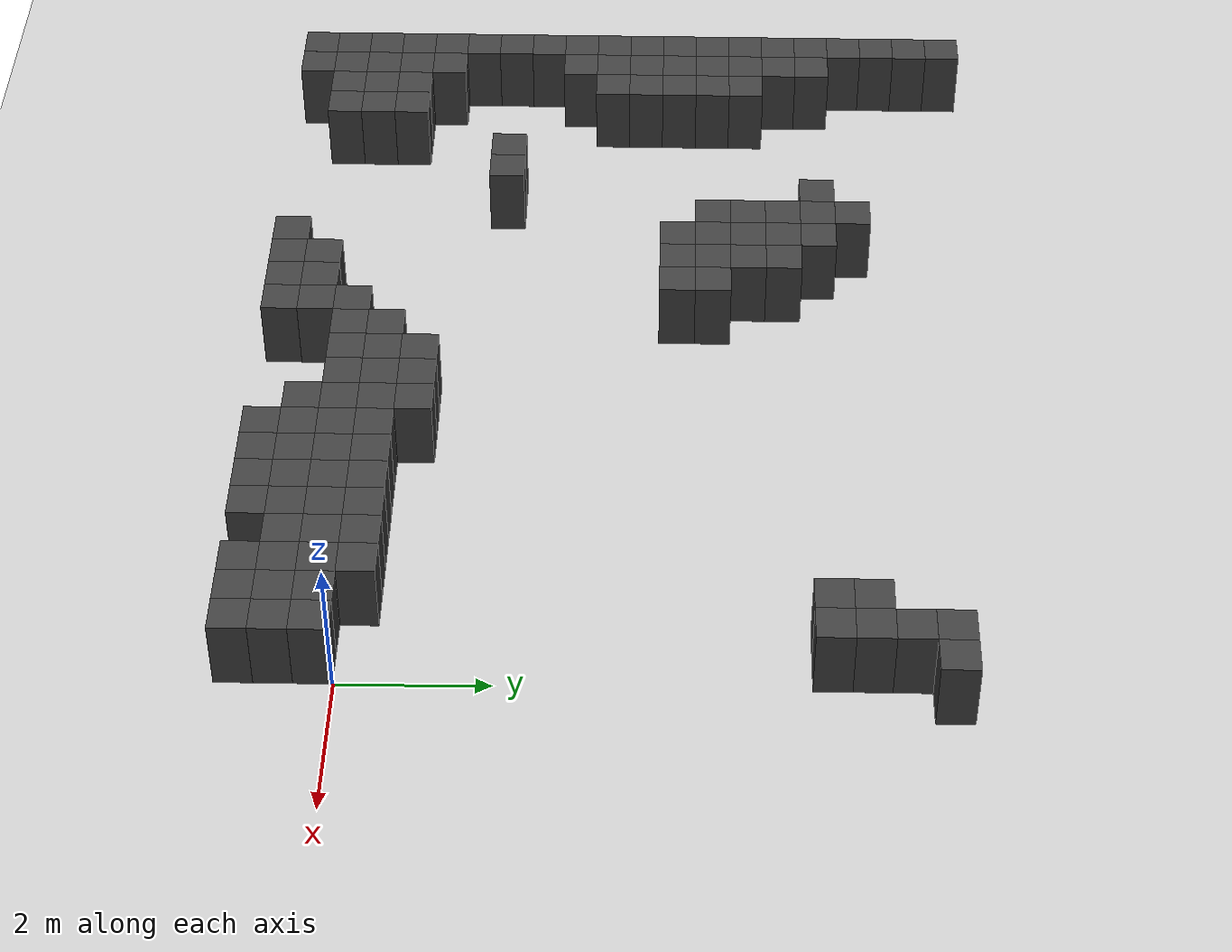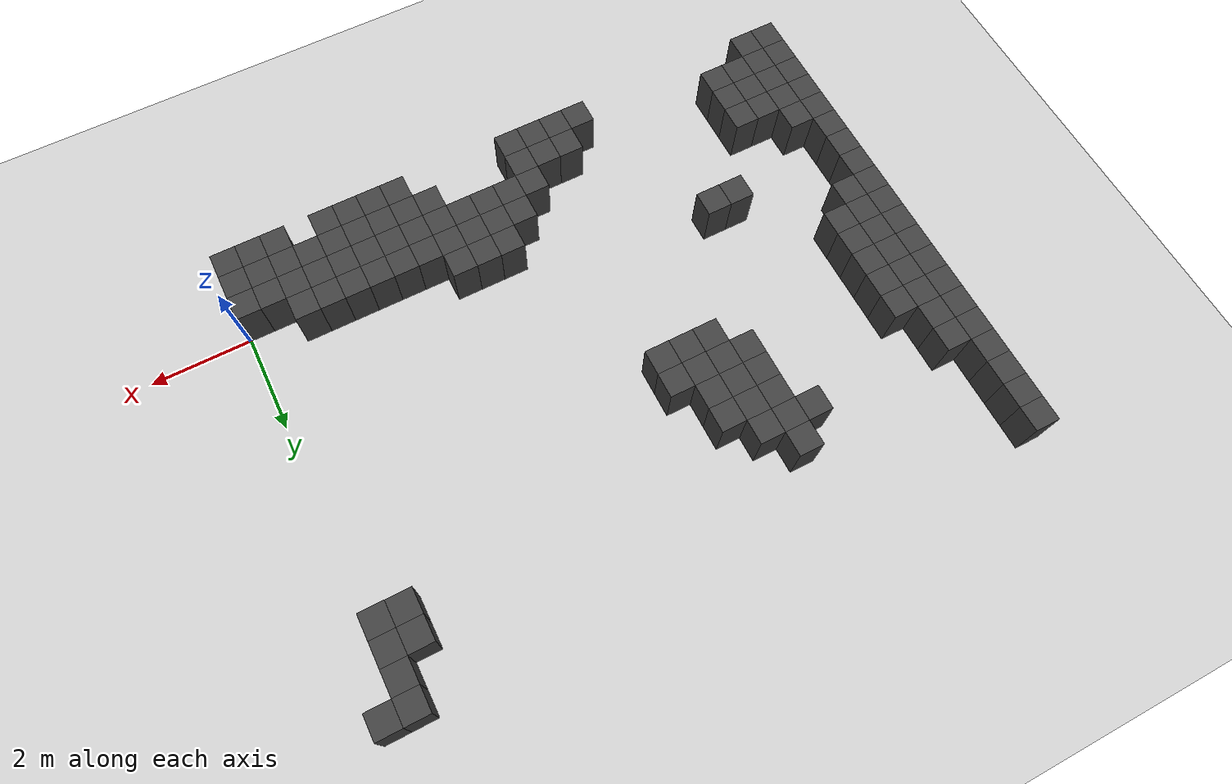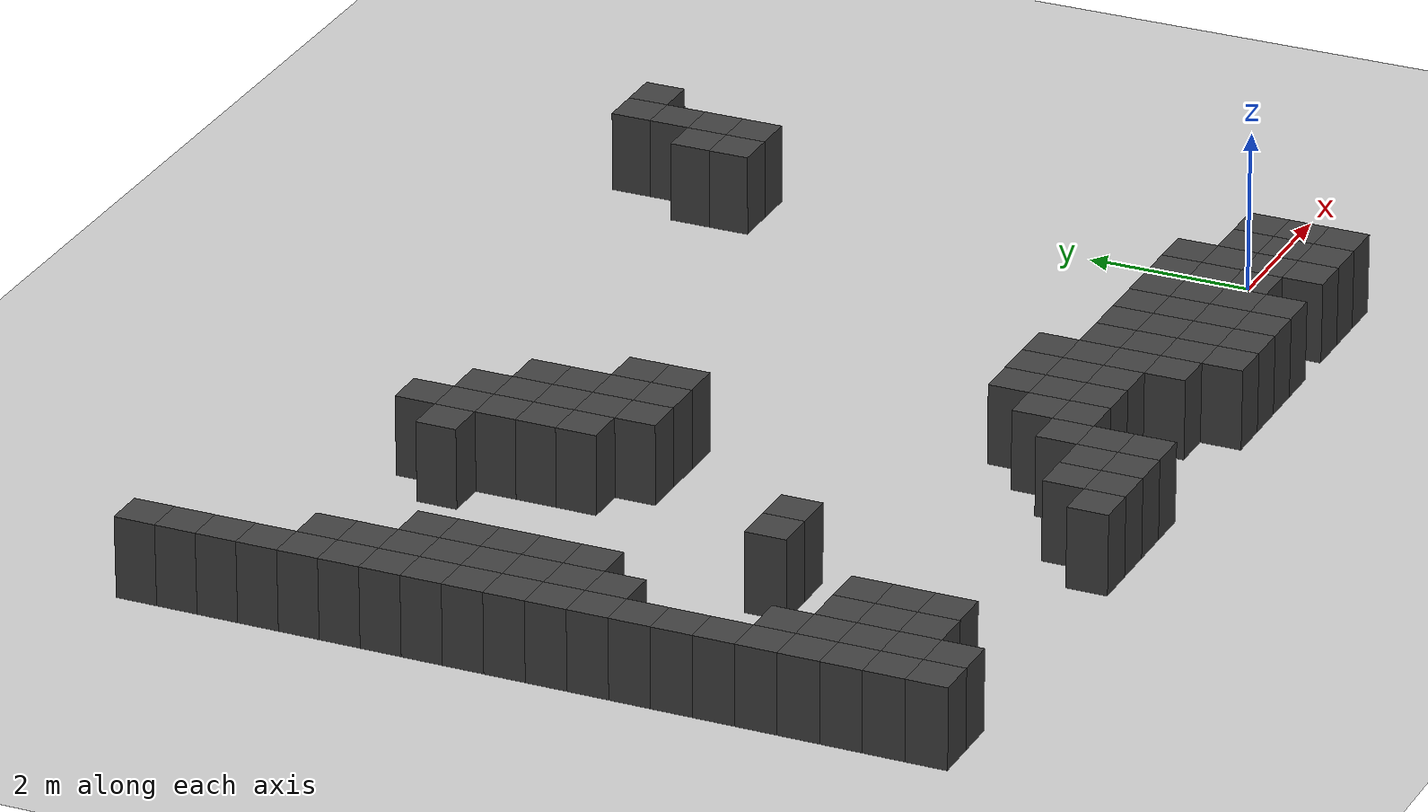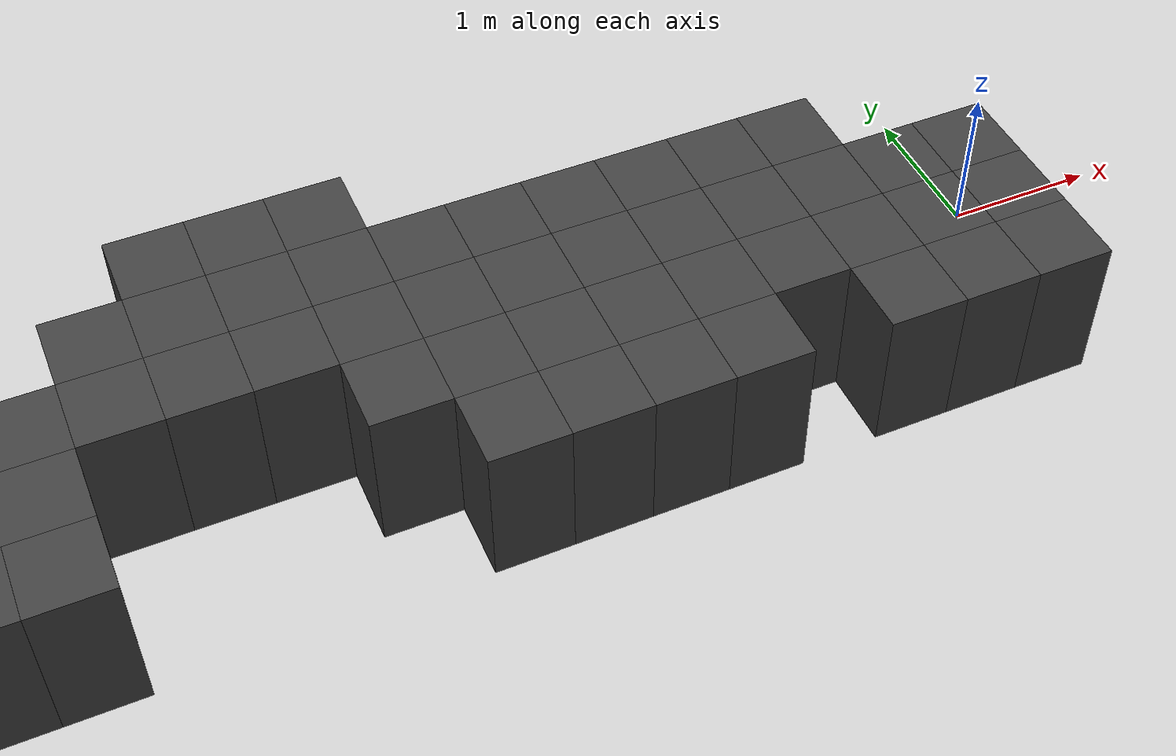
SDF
<sdf version="1.7">
 <world name="map_9826">
  <model name="ground_plane">
   <static>true</static>
   <link name="link">
    <collision name="collision">
     <geometry><plane><normal>0 0 1</normal><size>200 200</size></plane></geometry>
    </collision>
    <visual name="visual">
     <geometry><plane><normal>0 0 1</normal><size>200 200</size></plane></geometry>
     <material><ambient>0.8 0.8 0.8 1</ambient><diffuse>0.8 0.8 0.8 1</diffuse></material>
    </visual>
   </link>
  </model>
  <model name="maze_environment">
   <static>true</static>
   <link name="wall_251">
    <pose>-12.250 8.250 0.500 0 0 0</pose>
    <collision name="col"><geometry><box><size>0.5 0.5 1.0</size></box></geometry></collision>
    <visual name="vis">
     <geometry><box><size>0.5 0.5 1.0</size></box></geometry>
     <material><ambient>0.15 0.15 0.15 1</ambient><diffuse>0.25 0.25 0.25 1</diffuse></material>
    </visual>
   </link>
   <link name="wall_263">
    <pose>-12.250 7.750 0.500 0 0 0</pose>
    <collision name="col"><geometry><box><size>0.5 0.5 1.0</size></box></geometry></collision>
    <visual name="vis">
     <geometry><box><size>0.5 0.5 1.0</size></box></geometry>
     <material><ambient>0.15 0.15 0.15 1</ambient><diffuse>0.25 0.25 0.25 1</diffuse></material>
    </visual>
   </link>
   <link name="wall_264">
    <pose>-0.250 7.750 0.500 0 0 0</pose>
    <collision name="col"><geometry><box><size>0.5 0.5 1.0</size></box></geometry></collision>
    <visual name="vis">
     <geometry><box><size>0.5 0.5 1.0</size></box></geometry>
     <material><ambient>0.15 0.15 0.15 1</ambient><diffuse>0.25 0.25 0.25 1</diffuse></material>
    </visual>
   </link>
   <link name="wall_265">
    <pose>0.250 7.750 0.500 0 0 0</pose>
    <collision name="col"><geometry><box><size>0.5 0.5 1.0</size></box></geometry></collision>
    <visual name="vis">
     <geometry><box><size>0.5 0.5 1.0</size></box></geometry>
     <material><ambient>0.15 0.15 0.15 1</ambient><diffuse>0.25 0.25 0.25 1</diffuse></material>
    </visual>
   </link>
   <link name="wall_270">
    <pose>-12.250 7.250 0.500 0 0 0</pose>
    <collision name="col"><geometry><box><size>0.5 0.5 1.0</size></box></geometry></collision>
    <visual name="vis">
     <geometry><box><size>0.5 0.5 1.0</size></box></geometry>
     <material><ambient>0.15 0.15 0.15 1</ambient><diffuse>0.25 0.25 0.25 1</diffuse></material>
    </visual>
   </link>
   <link name="wall_271">
    <pose>-0.250 7.250 0.500 0 0 0</pose>
    <collision name="col"><geometry><box><size>0.5 0.5 1.0</size></box></geometry></collision>
    <visual name="vis">
     <geometry><box><size>0.5 0.5 1.0</size></box></geometry>
     <material><ambient>0.15 0.15 0.15 1</ambient><diffuse>0.25 0.25 0.25 1</diffuse></material>
    </visual>
   </link>
   <link name="wall_278">
    <pose>-12.250 6.750 0.500 0 0 0</pose>
    <collision name="col"><geometry><box><size>0.5 0.5 1.0</size></box></geometry></collision>
    <visual name="vis">
     <geometry><box><size>0.5 0.5 1.0</size></box></geometry>
     <material><ambient>0.15 0.15 0.15 1</ambient><diffuse>0.25 0.25 0.25 1</diffuse></material>
    </visual>
   </link>
   <link name="wall_279">
    <pose>-8.250 6.750 0.500 0 0 0</pose>
    <collision name="col"><geometry><box><size>0.5 0.5 1.0</size></box></geometry></collision>
    <visual name="vis">
     <geometry><box><size>0.5 0.5 1.0</size></box></geometry>
     <material><ambient>0.15 0.15 0.15 1</ambient><diffuse>0.25 0.25 0.25 1</diffuse></material>
    </visual>
   </link>
   <link name="wall_280">
    <pose>-0.750 6.750 0.500 0 0 0</pose>
    <collision name="col"><geometry><box><size>0.5 0.5 1.0</size></box></geometry></collision>
    <visual name="vis">
     <geometry><box><size>0.5 0.5 1.0</size></box></geometry>
     <material><ambient>0.15 0.15 0.15 1</ambient><diffuse>0.25 0.25 0.25 1</diffuse></material>
    </visual>
   </link>
   <link name="wall_281">
    <pose>-0.250 6.750 0.500 0 0 0</pose>
    <collision name="col"><geometry><box><size>0.5 0.5 1.0</size></box></geometry></collision>
    <visual name="vis">
     <geometry><box><size>0.5 0.5 1.0</size></box></geometry>
     <material><ambient>0.15 0.15 0.15 1</ambient><diffuse>0.25 0.25 0.25 1</diffuse></material>
    </visual>
   </link>
   <link name="wall_290">
    <pose>-12.250 6.250 0.500 0 0 0</pose>
    <collision name="col"><geometry><box><size>0.5 0.5 1.0</size></box></geometry></collision>
    <visual name="vis">
     <geometry><box><size>0.5 0.5 1.0</size></box></geometry>
     <material><ambient>0.15 0.15 0.15 1</ambient><diffuse>0.25 0.25 0.25 1</diffuse></material>
    </visual>
   </link>
   <link name="wall_291">
    <pose>-11.750 6.250 0.500 0 0 0</pose>
    <collision name="col"><geometry><box><size>0.5 0.5 1.0</size></box></geometry></collision>
    <visual name="vis">
     <geometry><box><size>0.5 0.5 1.0</size></box></geometry>
     <material><ambient>0.15 0.15 0.15 1</ambient><diffuse>0.25 0.25 0.25 1</diffuse></material>
    </visual>
   </link>
   <link name="wall_292">
    <pose>-8.750 6.250 0.500 0 0 0</pose>
    <collision name="col"><geometry><box><size>0.5 0.5 1.0</size></box></geometry></collision>
    <visual name="vis">
     <geometry><box><size>0.5 0.5 1.0</size></box></geometry>
     <material><ambient>0.15 0.15 0.15 1</ambient><diffuse>0.25 0.25 0.25 1</diffuse></material>
    </visual>
   </link>
   <link name="wall_293">
    <pose>-8.250 6.250 0.500 0 0 0</pose>
    <collision name="col"><geometry><box><size>0.5 0.5 1.0</size></box></geometry></collision>
    <visual name="vis">
     <geometry><box><size>0.5 0.5 1.0</size></box></geometry>
     <material><ambient>0.15 0.15 0.15 1</ambient><diffuse>0.25 0.25 0.25 1</diffuse></material>
    </visual>
   </link>
   <link name="wall_294">
    <pose>-7.750 6.250 0.500 0 0 0</pose>
    <collision name="col"><geometry><box><size>0.5 0.5 1.0</size></box></geometry></collision>
    <visual name="vis">
     <geometry><box><size>0.5 0.5 1.0</size></box></geometry>
     <material><ambient>0.15 0.15 0.15 1</ambient><diffuse>0.25 0.25 0.25 1</diffuse></material>
    </visual>
   </link>
   <link name="wall_295">
    <pose>-0.750 6.250 0.500 0 0 0</pose>
    <collision name="col"><geometry><box><size>0.5 0.5 1.0</size></box></geometry></collision>
    <visual name="vis">
     <geometry><box><size>0.5 0.5 1.0</size></box></geometry>
     <material><ambient>0.15 0.15 0.15 1</ambient><diffuse>0.25 0.25 0.25 1</diffuse></material>
    </visual>
   </link>
   <link name="wall_296">
    <pose>-0.250 6.250 0.500 0 0 0</pose>
    <collision name="col"><geometry><box><size>0.5 0.5 1.0</size></box></geometry></collision>
    <visual name="vis">
     <geometry><box><size>0.5 0.5 1.0</size></box></geometry>
     <material><ambient>0.15 0.15 0.15 1</ambient><diffuse>0.25 0.25 0.25 1</diffuse></material>
    </visual>
   </link>
   <link name="wall_310">
    <pose>-12.250 5.750 0.500 0 0 0</pose>
    <collision name="col"><geometry><box><size>0.5 0.5 1.0</size></box></geometry></collision>
    <visual name="vis">
     <geometry><box><size>0.5 0.5 1.0</size></box></geometry>
     <material><ambient>0.15 0.15 0.15 1</ambient><diffuse>0.25 0.25 0.25 1</diffuse></material>
    </visual>
   </link>
   <link name="wall_311">
    <pose>-11.750 5.750 0.500 0 0 0</pose>
    <collision name="col"><geometry><box><size>0.5 0.5 1.0</size></box></geometry></collision>
    <visual name="vis">
     <geometry><box><size>0.5 0.5 1.0</size></box></geometry>
     <material><ambient>0.15 0.15 0.15 1</ambient><diffuse>0.25 0.25 0.25 1</diffuse></material>
    </visual>
   </link>
   <link name="wall_312">
    <pose>-8.250 5.750 0.500 0 0 0</pose>
    <collision name="col"><geometry><box><size>0.5 0.5 1.0</size></box></geometry></collision>
    <visual name="vis">
     <geometry><box><size>0.5 0.5 1.0</size></box></geometry>
     <material><ambient>0.15 0.15 0.15 1</ambient><diffuse>0.25 0.25 0.25 1</diffuse></material>
    </visual>
   </link>
   <link name="wall_313">
    <pose>-7.750 5.750 0.500 0 0 0</pose>
    <collision name="col"><geometry><box><size>0.5 0.5 1.0</size></box></geometry></collision>
    <visual name="vis">
     <geometry><box><size>0.5 0.5 1.0</size></box></geometry>
     <material><ambient>0.15 0.15 0.15 1</ambient><diffuse>0.25 0.25 0.25 1</diffuse></material>
    </visual>
   </link>
   <link name="wall_314">
    <pose>-7.250 5.750 0.500 0 0 0</pose>
    <collision name="col"><geometry><box><size>0.5 0.5 1.0</size></box></geometry></collision>
    <visual name="vis">
     <geometry><box><size>0.5 0.5 1.0</size></box></geometry>
     <material><ambient>0.15 0.15 0.15 1</ambient><diffuse>0.25 0.25 0.25 1</diffuse></material>
    </visual>
   </link>
   <link name="wall_326">
    <pose>-12.250 5.250 0.500 0 0 0</pose>
    <collision name="col"><geometry><box><size>0.5 0.5 1.0</size></box></geometry></collision>
    <visual name="vis">
     <geometry><box><size>0.5 0.5 1.0</size></box></geometry>
     <material><ambient>0.15 0.15 0.15 1</ambient><diffuse>0.25 0.25 0.25 1</diffuse></material>
    </visual>
   </link>
   <link name="wall_327">
    <pose>-11.750 5.250 0.500 0 0 0</pose>
    <collision name="col"><geometry><box><size>0.5 0.5 1.0</size></box></geometry></collision>
    <visual name="vis">
     <geometry><box><size>0.5 0.5 1.0</size></box></geometry>
     <material><ambient>0.15 0.15 0.15 1</ambient><diffuse>0.25 0.25 0.25 1</diffuse></material>
    </visual>
   </link>
   <link name="wall_328">
    <pose>-11.250 5.250 0.500 0 0 0</pose>
    <collision name="col"><geometry><box><size>0.5 0.5 1.0</size></box></geometry></collision>
    <visual name="vis">
     <geometry><box><size>0.5 0.5 1.0</size></box></geometry>
     <material><ambient>0.15 0.15 0.15 1</ambient><diffuse>0.25 0.25 0.25 1</diffuse></material>
    </visual>
   </link>
   <link name="wall_329">
    <pose>-8.250 5.250 0.500 0 0 0</pose>
    <collision name="col"><geometry><box><size>0.5 0.5 1.0</size></box></geometry></collision>
    <visual name="vis">
     <geometry><box><size>0.5 0.5 1.0</size></box></geometry>
     <material><ambient>0.15 0.15 0.15 1</ambient><diffuse>0.25 0.25 0.25 1</diffuse></material>
    </visual>
   </link>
   <link name="wall_330">
    <pose>-7.750 5.250 0.500 0 0 0</pose>
    <collision name="col"><geometry><box><size>0.5 0.5 1.0</size></box></geometry></collision>
    <visual name="vis">
     <geometry><box><size>0.5 0.5 1.0</size></box></geometry>
     <material><ambient>0.15 0.15 0.15 1</ambient><diffuse>0.25 0.25 0.25 1</diffuse></material>
    </visual>
   </link>
   <link name="wall_331">
    <pose>-7.250 5.250 0.500 0 0 0</pose>
    <collision name="col"><geometry><box><size>0.5 0.5 1.0</size></box></geometry></collision>
    <visual name="vis">
     <geometry><box><size>0.5 0.5 1.0</size></box></geometry>
     <material><ambient>0.15 0.15 0.15 1</ambient><diffuse>0.25 0.25 0.25 1</diffuse></material>
    </visual>
   </link>
   <link name="wall_339">
    <pose>-12.250 4.750 0.500 0 0 0</pose>
    <collision name="col"><geometry><box><size>0.5 0.5 1.0</size></box></geometry></collision>
    <visual name="vis">
     <geometry><box><size>0.5 0.5 1.0</size></box></geometry>
     <material><ambient>0.15 0.15 0.15 1</ambient><diffuse>0.25 0.25 0.25 1</diffuse></material>
    </visual>
   </link>
   <link name="wall_340">
    <pose>-11.750 4.750 0.500 0 0 0</pose>
    <collision name="col"><geometry><box><size>0.5 0.5 1.0</size></box></geometry></collision>
    <visual name="vis">
     <geometry><box><size>0.5 0.5 1.0</size></box></geometry>
     <material><ambient>0.15 0.15 0.15 1</ambient><diffuse>0.25 0.25 0.25 1</diffuse></material>
    </visual>
   </link>
   <link name="wall_341">
    <pose>-11.250 4.750 0.500 0 0 0</pose>
    <collision name="col"><geometry><box><size>0.5 0.5 1.0</size></box></geometry></collision>
    <visual name="vis">
     <geometry><box><size>0.5 0.5 1.0</size></box></geometry>
     <material><ambient>0.15 0.15 0.15 1</ambient><diffuse>0.25 0.25 0.25 1</diffuse></material>
    </visual>
   </link>
   <link name="wall_342">
    <pose>-8.250 4.750 0.500 0 0 0</pose>
    <collision name="col"><geometry><box><size>0.5 0.5 1.0</size></box></geometry></collision>
    <visual name="vis">
     <geometry><box><size>0.5 0.5 1.0</size></box></geometry>
     <material><ambient>0.15 0.15 0.15 1</ambient><diffuse>0.25 0.25 0.25 1</diffuse></material>
    </visual>
   </link>
   <link name="wall_343">
    <pose>-7.750 4.750 0.500 0 0 0</pose>
    <collision name="col"><geometry><box><size>0.5 0.5 1.0</size></box></geometry></collision>
    <visual name="vis">
     <geometry><box><size>0.5 0.5 1.0</size></box></geometry>
     <material><ambient>0.15 0.15 0.15 1</ambient><diffuse>0.25 0.25 0.25 1</diffuse></material>
    </visual>
   </link>
   <link name="wall_344">
    <pose>-7.250 4.750 0.500 0 0 0</pose>
    <collision name="col"><geometry><box><size>0.5 0.5 1.0</size></box></geometry></collision>
    <visual name="vis">
     <geometry><box><size>0.5 0.5 1.0</size></box></geometry>
     <material><ambient>0.15 0.15 0.15 1</ambient><diffuse>0.25 0.25 0.25 1</diffuse></material>
    </visual>
   </link>
   <link name="wall_345">
    <pose>-6.750 4.750 0.500 0 0 0</pose>
    <collision name="col"><geometry><box><size>0.5 0.5 1.0</size></box></geometry></collision>
    <visual name="vis">
     <geometry><box><size>0.5 0.5 1.0</size></box></geometry>
     <material><ambient>0.15 0.15 0.15 1</ambient><diffuse>0.25 0.25 0.25 1</diffuse></material>
    </visual>
   </link>
   <link name="wall_352">
    <pose>-12.250 4.250 0.500 0 0 0</pose>
    <collision name="col"><geometry><box><size>0.5 0.5 1.0</size></box></geometry></collision>
    <visual name="vis">
     <geometry><box><size>0.5 0.5 1.0</size></box></geometry>
     <material><ambient>0.15 0.15 0.15 1</ambient><diffuse>0.25 0.25 0.25 1</diffuse></material>
    </visual>
   </link>
   <link name="wall_353">
    <pose>-11.750 4.250 0.500 0 0 0</pose>
    <collision name="col"><geometry><box><size>0.5 0.5 1.0</size></box></geometry></collision>
    <visual name="vis">
     <geometry><box><size>0.5 0.5 1.0</size></box></geometry>
     <material><ambient>0.15 0.15 0.15 1</ambient><diffuse>0.25 0.25 0.25 1</diffuse></material>
    </visual>
   </link>
   <link name="wall_354">
    <pose>-11.250 4.250 0.500 0 0 0</pose>
    <collision name="col"><geometry><box><size>0.5 0.5 1.0</size></box></geometry></collision>
    <visual name="vis">
     <geometry><box><size>0.5 0.5 1.0</size></box></geometry>
     <material><ambient>0.15 0.15 0.15 1</ambient><diffuse>0.25 0.25 0.25 1</diffuse></material>
    </visual>
   </link>
   <link name="wall_355">
    <pose>-7.750 4.250 0.500 0 0 0</pose>
    <collision name="col"><geometry><box><size>0.5 0.5 1.0</size></box></geometry></collision>
    <visual name="vis">
     <geometry><box><size>0.5 0.5 1.0</size></box></geometry>
     <material><ambient>0.15 0.15 0.15 1</ambient><diffuse>0.25 0.25 0.25 1</diffuse></material>
    </visual>
   </link>
   <link name="wall_356">
    <pose>-7.250 4.250 0.500 0 0 0</pose>
    <collision name="col"><geometry><box><size>0.5 0.5 1.0</size></box></geometry></collision>
    <visual name="vis">
     <geometry><box><size>0.5 0.5 1.0</size></box></geometry>
     <material><ambient>0.15 0.15 0.15 1</ambient><diffuse>0.25 0.25 0.25 1</diffuse></material>
    </visual>
   </link>
   <link name="wall_357">
    <pose>-6.750 4.250 0.500 0 0 0</pose>
    <collision name="col"><geometry><box><size>0.5 0.5 1.0</size></box></geometry></collision>
    <visual name="vis">
     <geometry><box><size>0.5 0.5 1.0</size></box></geometry>
     <material><ambient>0.15 0.15 0.15 1</ambient><diffuse>0.25 0.25 0.25 1</diffuse></material>
    </visual>
   </link>
   <link name="wall_368">
    <pose>-12.250 3.750 0.500 0 0 0</pose>
    <collision name="col"><geometry><box><size>0.5 0.5 1.0</size></box></geometry></collision>
    <visual name="vis">
     <geometry><box><size>0.5 0.5 1.0</size></box></geometry>
     <material><ambient>0.15 0.15 0.15 1</ambient><diffuse>0.25 0.25 0.25 1</diffuse></material>
    </visual>
   </link>
   <link name="wall_369">
    <pose>-11.750 3.750 0.500 0 0 0</pose>
    <collision name="col"><geometry><box><size>0.5 0.5 1.0</size></box></geometry></collision>
    <visual name="vis">
     <geometry><box><size>0.5 0.5 1.0</size></box></geometry>
     <material><ambient>0.15 0.15 0.15 1</ambient><diffuse>0.25 0.25 0.25 1</diffuse></material>
    </visual>
   </link>
   <link name="wall_370">
    <pose>-11.250 3.750 0.500 0 0 0</pose>
    <collision name="col"><geometry><box><size>0.5 0.5 1.0</size></box></geometry></collision>
    <visual name="vis">
     <geometry><box><size>0.5 0.5 1.0</size></box></geometry>
     <material><ambient>0.15 0.15 0.15 1</ambient><diffuse>0.25 0.25 0.25 1</diffuse></material>
    </visual>
   </link>
   <link name="wall_385">
    <pose>-12.250 3.250 0.500 0 0 0</pose>
    <collision name="col"><geometry><box><size>0.5 0.5 1.0</size></box></geometry></collision>
    <visual name="vis">
     <geometry><box><size>0.5 0.5 1.0</size></box></geometry>
     <material><ambient>0.15 0.15 0.15 1</ambient><diffuse>0.25 0.25 0.25 1</diffuse></material>
    </visual>
   </link>
   <link name="wall_386">
    <pose>-11.750 3.250 0.500 0 0 0</pose>
    <collision name="col"><geometry><box><size>0.5 0.5 1.0</size></box></geometry></collision>
    <visual name="vis">
     <geometry><box><size>0.5 0.5 1.0</size></box></geometry>
     <material><ambient>0.15 0.15 0.15 1</ambient><diffuse>0.25 0.25 0.25 1</diffuse></material>
    </visual>
   </link>
   <link name="wall_387">
    <pose>-11.250 3.250 0.500 0 0 0</pose>
    <collision name="col"><geometry><box><size>0.5 0.5 1.0</size></box></geometry></collision>
    <visual name="vis">
     <geometry><box><size>0.5 0.5 1.0</size></box></geometry>
     <material><ambient>0.15 0.15 0.15 1</ambient><diffuse>0.25 0.25 0.25 1</diffuse></material>
    </visual>
   </link>
   <link name="wall_402">
    <pose>-12.250 2.750 0.500 0 0 0</pose>
    <collision name="col"><geometry><box><size>0.5 0.5 1.0</size></box></geometry></collision>
    <visual name="vis">
     <geometry><box><size>0.5 0.5 1.0</size></box></geometry>
     <material><ambient>0.15 0.15 0.15 1</ambient><diffuse>0.25 0.25 0.25 1</diffuse></material>
    </visual>
   </link>
   <link name="wall_403">
    <pose>-11.750 2.750 0.500 0 0 0</pose>
    <collision name="col"><geometry><box><size>0.5 0.5 1.0</size></box></geometry></collision>
    <visual name="vis">
     <geometry><box><size>0.5 0.5 1.0</size></box></geometry>
     <material><ambient>0.15 0.15 0.15 1</ambient><diffuse>0.25 0.25 0.25 1</diffuse></material>
    </visual>
   </link>
   <link name="wall_418">
    <pose>-12.250 2.250 0.500 0 0 0</pose>
    <collision name="col"><geometry><box><size>0.5 0.5 1.0</size></box></geometry></collision>
    <visual name="vis">
     <geometry><box><size>0.5 0.5 1.0</size></box></geometry>
     <material><ambient>0.15 0.15 0.15 1</ambient><diffuse>0.25 0.25 0.25 1</diffuse></material>
    </visual>
   </link>
   <link name="wall_432">
    <pose>-12.250 1.750 0.500 0 0 0</pose>
    <collision name="col"><geometry><box><size>0.5 0.5 1.0</size></box></geometry></collision>
    <visual name="vis">
     <geometry><box><size>0.5 0.5 1.0</size></box></geometry>
     <material><ambient>0.15 0.15 0.15 1</ambient><diffuse>0.25 0.25 0.25 1</diffuse></material>
    </visual>
   </link>
   <link name="wall_433">
    <pose>-9.750 1.750 0.500 0 0 0</pose>
    <collision name="col"><geometry><box><size>0.5 0.5 1.0</size></box></geometry></collision>
    <visual name="vis">
     <geometry><box><size>0.5 0.5 1.0</size></box></geometry>
     <material><ambient>0.15 0.15 0.15 1</ambient><diffuse>0.25 0.25 0.25 1</diffuse></material>
    </visual>
   </link>
   <link name="wall_434">
    <pose>-9.250 1.750 0.500 0 0 0</pose>
    <collision name="col"><geometry><box><size>0.5 0.5 1.0</size></box></geometry></collision>
    <visual name="vis">
     <geometry><box><size>0.5 0.5 1.0</size></box></geometry>
     <material><ambient>0.15 0.15 0.15 1</ambient><diffuse>0.25 0.25 0.25 1</diffuse></material>
    </visual>
   </link>
   <link name="wall_449">
    <pose>-12.250 1.250 0.500 0 0 0</pose>
    <collision name="col"><geometry><box><size>0.5 0.5 1.0</size></box></geometry></collision>
    <visual name="vis">
     <geometry><box><size>0.5 0.5 1.0</size></box></geometry>
     <material><ambient>0.15 0.15 0.15 1</ambient><diffuse>0.25 0.25 0.25 1</diffuse></material>
    </visual>
   </link>
   <link name="wall_466">
    <pose>-12.250 0.750 0.500 0 0 0</pose>
    <collision name="col"><geometry><box><size>0.5 0.5 1.0</size></box></geometry></collision>
    <visual name="vis">
     <geometry><box><size>0.5 0.5 1.0</size></box></geometry>
     <material><ambient>0.15 0.15 0.15 1</ambient><diffuse>0.25 0.25 0.25 1</diffuse></material>
    </visual>
   </link>
   <link name="wall_467">
    <pose>-11.750 0.750 0.500 0 0 0</pose>
    <collision name="col"><geometry><box><size>0.5 0.5 1.0</size></box></geometry></collision>
    <visual name="vis">
     <geometry><box><size>0.5 0.5 1.0</size></box></geometry>
     <material><ambient>0.15 0.15 0.15 1</ambient><diffuse>0.25 0.25 0.25 1</diffuse></material>
    </visual>
   </link>
   <link name="wall_468">
    <pose>-5.250 0.750 0.500 0 0 0</pose>
    <collision name="col"><geometry><box><size>0.5 0.5 1.0</size></box></geometry></collision>
    <visual name="vis">
     <geometry><box><size>0.5 0.5 1.0</size></box></geometry>
     <material><ambient>0.15 0.15 0.15 1</ambient><diffuse>0.25 0.25 0.25 1</diffuse></material>
    </visual>
   </link>
   <link name="wall_469">
    <pose>-4.750 0.750 0.500 0 0 0</pose>
    <collision name="col"><geometry><box><size>0.5 0.5 1.0</size></box></geometry></collision>
    <visual name="vis">
     <geometry><box><size>0.5 0.5 1.0</size></box></geometry>
     <material><ambient>0.15 0.15 0.15 1</ambient><diffuse>0.25 0.25 0.25 1</diffuse></material>
    </visual>
   </link>
   <link name="wall_470">
    <pose>-4.250 0.750 0.500 0 0 0</pose>
    <collision name="col"><geometry><box><size>0.5 0.5 1.0</size></box></geometry></collision>
    <visual name="vis">
     <geometry><box><size>0.5 0.5 1.0</size></box></geometry>
     <material><ambient>0.15 0.15 0.15 1</ambient><diffuse>0.25 0.25 0.25 1</diffuse></material>
    </visual>
   </link>
   <link name="wall_487">
    <pose>-12.250 0.250 0.500 0 0 0</pose>
    <collision name="col"><geometry><box><size>0.5 0.5 1.0</size></box></geometry></collision>
    <visual name="vis">
     <geometry><box><size>0.5 0.5 1.0</size></box></geometry>
     <material><ambient>0.15 0.15 0.15 1</ambient><diffuse>0.25 0.25 0.25 1</diffuse></material>
    </visual>
   </link>
   <link name="wall_488">
    <pose>-11.750 0.250 0.500 0 0 0</pose>
    <collision name="col"><geometry><box><size>0.5 0.5 1.0</size></box></geometry></collision>
    <visual name="vis">
     <geometry><box><size>0.5 0.5 1.0</size></box></geometry>
     <material><ambient>0.15 0.15 0.15 1</ambient><diffuse>0.25 0.25 0.25 1</diffuse></material>
    </visual>
   </link>
   <link name="wall_489">
    <pose>-11.250 0.250 0.500 0 0 0</pose>
    <collision name="col"><geometry><box><size>0.5 0.5 1.0</size></box></geometry></collision>
    <visual name="vis">
     <geometry><box><size>0.5 0.5 1.0</size></box></geometry>
     <material><ambient>0.15 0.15 0.15 1</ambient><diffuse>0.25 0.25 0.25 1</diffuse></material>
    </visual>
   </link>
   <link name="wall_490">
    <pose>-10.750 0.250 0.500 0 0 0</pose>
    <collision name="col"><geometry><box><size>0.5 0.5 1.0</size></box></geometry></collision>
    <visual name="vis">
     <geometry><box><size>0.5 0.5 1.0</size></box></geometry>
     <material><ambient>0.15 0.15 0.15 1</ambient><diffuse>0.25 0.25 0.25 1</diffuse></material>
    </visual>
   </link>
   <link name="wall_491">
    <pose>-5.750 0.250 0.500 0 0 0</pose>
    <collision name="col"><geometry><box><size>0.5 0.5 1.0</size></box></geometry></collision>
    <visual name="vis">
     <geometry><box><size>0.5 0.5 1.0</size></box></geometry>
     <material><ambient>0.15 0.15 0.15 1</ambient><diffuse>0.25 0.25 0.25 1</diffuse></material>
    </visual>
   </link>
   <link name="wall_492">
    <pose>-5.250 0.250 0.500 0 0 0</pose>
    <collision name="col"><geometry><box><size>0.5 0.5 1.0</size></box></geometry></collision>
    <visual name="vis">
     <geometry><box><size>0.5 0.5 1.0</size></box></geometry>
     <material><ambient>0.15 0.15 0.15 1</ambient><diffuse>0.25 0.25 0.25 1</diffuse></material>
    </visual>
   </link>
   <link name="wall_493">
    <pose>-4.750 0.250 0.500 0 0 0</pose>
    <collision name="col"><geometry><box><size>0.5 0.5 1.0</size></box></geometry></collision>
    <visual name="vis">
     <geometry><box><size>0.5 0.5 1.0</size></box></geometry>
     <material><ambient>0.15 0.15 0.15 1</ambient><diffuse>0.25 0.25 0.25 1</diffuse></material>
    </visual>
   </link>
   <link name="wall_494">
    <pose>-4.250 0.250 0.500 0 0 0</pose>
    <collision name="col"><geometry><box><size>0.5 0.5 1.0</size></box></geometry></collision>
    <visual name="vis">
     <geometry><box><size>0.5 0.5 1.0</size></box></geometry>
     <material><ambient>0.15 0.15 0.15 1</ambient><diffuse>0.25 0.25 0.25 1</diffuse></material>
    </visual>
   </link>
   <link name="wall_495">
    <pose>-3.750 0.250 0.500 0 0 0</pose>
    <collision name="col"><geometry><box><size>0.5 0.5 1.0</size></box></geometry></collision>
    <visual name="vis">
     <geometry><box><size>0.5 0.5 1.0</size></box></geometry>
     <material><ambient>0.15 0.15 0.15 1</ambient><diffuse>0.25 0.25 0.25 1</diffuse></material>
    </visual>
   </link>
   <link name="wall_496">
    <pose>-3.250 0.250 0.500 0 0 0</pose>
    <collision name="col"><geometry><box><size>0.5 0.5 1.0</size></box></geometry></collision>
    <visual name="vis">
     <geometry><box><size>0.5 0.5 1.0</size></box></geometry>
     <material><ambient>0.15 0.15 0.15 1</ambient><diffuse>0.25 0.25 0.25 1</diffuse></material>
    </visual>
   </link>
   <link name="wall_497">
    <pose>-2.750 0.250 0.500 0 0 0</pose>
    <collision name="col"><geometry><box><size>0.5 0.5 1.0</size></box></geometry></collision>
    <visual name="vis">
     <geometry><box><size>0.5 0.5 1.0</size></box></geometry>
     <material><ambient>0.15 0.15 0.15 1</ambient><diffuse>0.25 0.25 0.25 1</diffuse></material>
    </visual>
   </link>
   <link name="wall_498">
    <pose>-2.250 0.250 0.500 0 0 0</pose>
    <collision name="col"><geometry><box><size>0.5 0.5 1.0</size></box></geometry></collision>
    <visual name="vis">
     <geometry><box><size>0.5 0.5 1.0</size></box></geometry>
     <material><ambient>0.15 0.15 0.15 1</ambient><diffuse>0.25 0.25 0.25 1</diffuse></material>
    </visual>
   </link>
   <link name="wall_499">
    <pose>-1.750 0.250 0.500 0 0 0</pose>
    <collision name="col"><geometry><box><size>0.5 0.5 1.0</size></box></geometry></collision>
    <visual name="vis">
     <geometry><box><size>0.5 0.5 1.0</size></box></geometry>
     <material><ambient>0.15 0.15 0.15 1</ambient><diffuse>0.25 0.25 0.25 1</diffuse></material>
    </visual>
   </link>
   <link name="wall_500">
    <pose>-1.250 0.250 0.500 0 0 0</pose>
    <collision name="col"><geometry><box><size>0.5 0.5 1.0</size></box></geometry></collision>
    <visual name="vis">
     <geometry><box><size>0.5 0.5 1.0</size></box></geometry>
     <material><ambient>0.15 0.15 0.15 1</ambient><diffuse>0.25 0.25 0.25 1</diffuse></material>
    </visual>
   </link>
   <link name="wall_518">
    <pose>-12.250 -0.250 0.500 0 0 0</pose>
    <collision name="col"><geometry><box><size>0.5 0.5 1.0</size></box></geometry></collision>
    <visual name="vis">
     <geometry><box><size>0.5 0.5 1.0</size></box></geometry>
     <material><ambient>0.15 0.15 0.15 1</ambient><diffuse>0.25 0.25 0.25 1</diffuse></material>
    </visual>
   </link>
   <link name="wall_519">
    <pose>-11.750 -0.250 0.500 0 0 0</pose>
    <collision name="col"><geometry><box><size>0.5 0.5 1.0</size></box></geometry></collision>
    <visual name="vis">
     <geometry><box><size>0.5 0.5 1.0</size></box></geometry>
     <material><ambient>0.15 0.15 0.15 1</ambient><diffuse>0.25 0.25 0.25 1</diffuse></material>
    </visual>
   </link>
   <link name="wall_520">
    <pose>-11.250 -0.250 0.500 0 0 0</pose>
    <collision name="col"><geometry><box><size>0.5 0.5 1.0</size></box></geometry></collision>
    <visual name="vis">
     <geometry><box><size>0.5 0.5 1.0</size></box></geometry>
     <material><ambient>0.15 0.15 0.15 1</ambient><diffuse>0.25 0.25 0.25 1</diffuse></material>
    </visual>
   </link>
   <link name="wall_521">
    <pose>-10.750 -0.250 0.500 0 0 0</pose>
    <collision name="col"><geometry><box><size>0.5 0.5 1.0</size></box></geometry></collision>
    <visual name="vis">
     <geometry><box><size>0.5 0.5 1.0</size></box></geometry>
     <material><ambient>0.15 0.15 0.15 1</ambient><diffuse>0.25 0.25 0.25 1</diffuse></material>
    </visual>
   </link>
   <link name="wall_522">
    <pose>-6.250 -0.250 0.500 0 0 0</pose>
    <collision name="col"><geometry><box><size>0.5 0.5 1.0</size></box></geometry></collision>
    <visual name="vis">
     <geometry><box><size>0.5 0.5 1.0</size></box></geometry>
     <material><ambient>0.15 0.15 0.15 1</ambient><diffuse>0.25 0.25 0.25 1</diffuse></material>
    </visual>
   </link>
   <link name="wall_523">
    <pose>-5.750 -0.250 0.500 0 0 0</pose>
    <collision name="col"><geometry><box><size>0.5 0.5 1.0</size></box></geometry></collision>
    <visual name="vis">
     <geometry><box><size>0.5 0.5 1.0</size></box></geometry>
     <material><ambient>0.15 0.15 0.15 1</ambient><diffuse>0.25 0.25 0.25 1</diffuse></material>
    </visual>
   </link>
   <link name="wall_524">
    <pose>-5.250 -0.250 0.500 0 0 0</pose>
    <collision name="col"><geometry><box><size>0.5 0.5 1.0</size></box></geometry></collision>
    <visual name="vis">
     <geometry><box><size>0.5 0.5 1.0</size></box></geometry>
     <material><ambient>0.15 0.15 0.15 1</ambient><diffuse>0.25 0.25 0.25 1</diffuse></material>
    </visual>
   </link>
   <link name="wall_525">
    <pose>-4.750 -0.250 0.500 0 0 0</pose>
    <collision name="col"><geometry><box><size>0.5 0.5 1.0</size></box></geometry></collision>
    <visual name="vis">
     <geometry><box><size>0.5 0.5 1.0</size></box></geometry>
     <material><ambient>0.15 0.15 0.15 1</ambient><diffuse>0.25 0.25 0.25 1</diffuse></material>
    </visual>
   </link>
   <link name="wall_526">
    <pose>-4.250 -0.250 0.500 0 0 0</pose>
    <collision name="col"><geometry><box><size>0.5 0.5 1.0</size></box></geometry></collision>
    <visual name="vis">
     <geometry><box><size>0.5 0.5 1.0</size></box></geometry>
     <material><ambient>0.15 0.15 0.15 1</ambient><diffuse>0.25 0.25 0.25 1</diffuse></material>
    </visual>
   </link>
   <link name="wall_527">
    <pose>-3.750 -0.250 0.500 0 0 0</pose>
    <collision name="col"><geometry><box><size>0.5 0.5 1.0</size></box></geometry></collision>
    <visual name="vis">
     <geometry><box><size>0.5 0.5 1.0</size></box></geometry>
     <material><ambient>0.15 0.15 0.15 1</ambient><diffuse>0.25 0.25 0.25 1</diffuse></material>
    </visual>
   </link>
   <link name="wall_528">
    <pose>-3.250 -0.250 0.500 0 0 0</pose>
    <collision name="col"><geometry><box><size>0.5 0.5 1.0</size></box></geometry></collision>
    <visual name="vis">
     <geometry><box><size>0.5 0.5 1.0</size></box></geometry>
     <material><ambient>0.15 0.15 0.15 1</ambient><diffuse>0.25 0.25 0.25 1</diffuse></material>
    </visual>
   </link>
   <link name="wall_529">
    <pose>-2.750 -0.250 0.500 0 0 0</pose>
    <collision name="col"><geometry><box><size>0.5 0.5 1.0</size></box></geometry></collision>
    <visual name="vis">
     <geometry><box><size>0.5 0.5 1.0</size></box></geometry>
     <material><ambient>0.15 0.15 0.15 1</ambient><diffuse>0.25 0.25 0.25 1</diffuse></material>
    </visual>
   </link>
   <link name="wall_530">
    <pose>-2.250 -0.250 0.500 0 0 0</pose>
    <collision name="col"><geometry><box><size>0.5 0.5 1.0</size></box></geometry></collision>
    <visual name="vis">
     <geometry><box><size>0.5 0.5 1.0</size></box></geometry>
     <material><ambient>0.15 0.15 0.15 1</ambient><diffuse>0.25 0.25 0.25 1</diffuse></material>
    </visual>
   </link>
   <link name="wall_531">
    <pose>-1.750 -0.250 0.500 0 0 0</pose>
    <collision name="col"><geometry><box><size>0.5 0.5 1.0</size></box></geometry></collision>
    <visual name="vis">
     <geometry><box><size>0.5 0.5 1.0</size></box></geometry>
     <material><ambient>0.15 0.15 0.15 1</ambient><diffuse>0.25 0.25 0.25 1</diffuse></material>
    </visual>
   </link>
   <link name="wall_532">
    <pose>-1.250 -0.250 0.500 0 0 0</pose>
    <collision name="col"><geometry><box><size>0.5 0.5 1.0</size></box></geometry></collision>
    <visual name="vis">
     <geometry><box><size>0.5 0.5 1.0</size></box></geometry>
     <material><ambient>0.15 0.15 0.15 1</ambient><diffuse>0.25 0.25 0.25 1</diffuse></material>
    </visual>
   </link>
   <link name="wall_533">
    <pose>-0.750 -0.250 0.500 0 0 0</pose>
    <collision name="col"><geometry><box><size>0.5 0.5 1.0</size></box></geometry></collision>
    <visual name="vis">
     <geometry><box><size>0.5 0.5 1.0</size></box></geometry>
     <material><ambient>0.15 0.15 0.15 1</ambient><diffuse>0.25 0.25 0.25 1</diffuse></material>
    </visual>
   </link>
   <link name="wall_534">
    <pose>-0.250 -0.250 0.500 0 0 0</pose>
    <collision name="col"><geometry><box><size>0.5 0.5 1.0</size></box></geometry></collision>
    <visual name="vis">
     <geometry><box><size>0.5 0.5 1.0</size></box></geometry>
     <material><ambient>0.15 0.15 0.15 1</ambient><diffuse>0.25 0.25 0.25 1</diffuse></material>
    </visual>
   </link>
   <link name="wall_551">
    <pose>-12.250 -0.750 0.500 0 0 0</pose>
    <collision name="col"><geometry><box><size>0.5 0.5 1.0</size></box></geometry></collision>
    <visual name="vis">
     <geometry><box><size>0.5 0.5 1.0</size></box></geometry>
     <material><ambient>0.15 0.15 0.15 1</ambient><diffuse>0.25 0.25 0.25 1</diffuse></material>
    </visual>
   </link>
   <link name="wall_552">
    <pose>-11.750 -0.750 0.500 0 0 0</pose>
    <collision name="col"><geometry><box><size>0.5 0.5 1.0</size></box></geometry></collision>
    <visual name="vis">
     <geometry><box><size>0.5 0.5 1.0</size></box></geometry>
     <material><ambient>0.15 0.15 0.15 1</ambient><diffuse>0.25 0.25 0.25 1</diffuse></material>
    </visual>
   </link>
   <link name="wall_553">
    <pose>-11.250 -0.750 0.500 0 0 0</pose>
    <collision name="col"><geometry><box><size>0.5 0.5 1.0</size></box></geometry></collision>
    <visual name="vis">
     <geometry><box><size>0.5 0.5 1.0</size></box></geometry>
     <material><ambient>0.15 0.15 0.15 1</ambient><diffuse>0.25 0.25 0.25 1</diffuse></material>
    </visual>
   </link>
   <link name="wall_554">
    <pose>-10.750 -0.750 0.500 0 0 0</pose>
    <collision name="col"><geometry><box><size>0.5 0.5 1.0</size></box></geometry></collision>
    <visual name="vis">
     <geometry><box><size>0.5 0.5 1.0</size></box></geometry>
     <material><ambient>0.15 0.15 0.15 1</ambient><diffuse>0.25 0.25 0.25 1</diffuse></material>
    </visual>
   </link>
   <link name="wall_555">
    <pose>-7.250 -0.750 0.500 0 0 0</pose>
    <collision name="col"><geometry><box><size>0.5 0.5 1.0</size></box></geometry></collision>
    <visual name="vis">
     <geometry><box><size>0.5 0.5 1.0</size></box></geometry>
     <material><ambient>0.15 0.15 0.15 1</ambient><diffuse>0.25 0.25 0.25 1</diffuse></material>
    </visual>
   </link>
   <link name="wall_556">
    <pose>-6.750 -0.750 0.500 0 0 0</pose>
    <collision name="col"><geometry><box><size>0.5 0.5 1.0</size></box></geometry></collision>
    <visual name="vis">
     <geometry><box><size>0.5 0.5 1.0</size></box></geometry>
     <material><ambient>0.15 0.15 0.15 1</ambient><diffuse>0.25 0.25 0.25 1</diffuse></material>
    </visual>
   </link>
   <link name="wall_557">
    <pose>-6.250 -0.750 0.500 0 0 0</pose>
    <collision name="col"><geometry><box><size>0.5 0.5 1.0</size></box></geometry></collision>
    <visual name="vis">
     <geometry><box><size>0.5 0.5 1.0</size></box></geometry>
     <material><ambient>0.15 0.15 0.15 1</ambient><diffuse>0.25 0.25 0.25 1</diffuse></material>
    </visual>
   </link>
   <link name="wall_558">
    <pose>-4.250 -0.750 0.500 0 0 0</pose>
    <collision name="col"><geometry><box><size>0.5 0.5 1.0</size></box></geometry></collision>
    <visual name="vis">
     <geometry><box><size>0.5 0.5 1.0</size></box></geometry>
     <material><ambient>0.15 0.15 0.15 1</ambient><diffuse>0.25 0.25 0.25 1</diffuse></material>
    </visual>
   </link>
   <link name="wall_559">
    <pose>-3.750 -0.750 0.500 0 0 0</pose>
    <collision name="col"><geometry><box><size>0.5 0.5 1.0</size></box></geometry></collision>
    <visual name="vis">
     <geometry><box><size>0.5 0.5 1.0</size></box></geometry>
     <material><ambient>0.15 0.15 0.15 1</ambient><diffuse>0.25 0.25 0.25 1</diffuse></material>
    </visual>
   </link>
   <link name="wall_560">
    <pose>-3.250 -0.750 0.500 0 0 0</pose>
    <collision name="col"><geometry><box><size>0.5 0.5 1.0</size></box></geometry></collision>
    <visual name="vis">
     <geometry><box><size>0.5 0.5 1.0</size></box></geometry>
     <material><ambient>0.15 0.15 0.15 1</ambient><diffuse>0.25 0.25 0.25 1</diffuse></material>
    </visual>
   </link>
   <link name="wall_561">
    <pose>-2.750 -0.750 0.500 0 0 0</pose>
    <collision name="col"><geometry><box><size>0.5 0.5 1.0</size></box></geometry></collision>
    <visual name="vis">
     <geometry><box><size>0.5 0.5 1.0</size></box></geometry>
     <material><ambient>0.15 0.15 0.15 1</ambient><diffuse>0.25 0.25 0.25 1</diffuse></material>
    </visual>
   </link>
   <link name="wall_562">
    <pose>-2.250 -0.750 0.500 0 0 0</pose>
    <collision name="col"><geometry><box><size>0.5 0.5 1.0</size></box></geometry></collision>
    <visual name="vis">
     <geometry><box><size>0.5 0.5 1.0</size></box></geometry>
     <material><ambient>0.15 0.15 0.15 1</ambient><diffuse>0.25 0.25 0.25 1</diffuse></material>
    </visual>
   </link>
   <link name="wall_563">
    <pose>-1.750 -0.750 0.500 0 0 0</pose>
    <collision name="col"><geometry><box><size>0.5 0.5 1.0</size></box></geometry></collision>
    <visual name="vis">
     <geometry><box><size>0.5 0.5 1.0</size></box></geometry>
     <material><ambient>0.15 0.15 0.15 1</ambient><diffuse>0.25 0.25 0.25 1</diffuse></material>
    </visual>
   </link>
   <link name="wall_564">
    <pose>-1.250 -0.750 0.500 0 0 0</pose>
    <collision name="col"><geometry><box><size>0.5 0.5 1.0</size></box></geometry></collision>
    <visual name="vis">
     <geometry><box><size>0.5 0.5 1.0</size></box></geometry>
     <material><ambient>0.15 0.15 0.15 1</ambient><diffuse>0.25 0.25 0.25 1</diffuse></material>
    </visual>
   </link>
   <link name="wall_565">
    <pose>-0.750 -0.750 0.500 0 0 0</pose>
    <collision name="col"><geometry><box><size>0.5 0.5 1.0</size></box></geometry></collision>
    <visual name="vis">
     <geometry><box><size>0.5 0.5 1.0</size></box></geometry>
     <material><ambient>0.15 0.15 0.15 1</ambient><diffuse>0.25 0.25 0.25 1</diffuse></material>
    </visual>
   </link>
   <link name="wall_566">
    <pose>-0.250 -0.750 0.500 0 0 0</pose>
    <collision name="col"><geometry><box><size>0.5 0.5 1.0</size></box></geometry></collision>
    <visual name="vis">
     <geometry><box><size>0.5 0.5 1.0</size></box></geometry>
     <material><ambient>0.15 0.15 0.15 1</ambient><diffuse>0.25 0.25 0.25 1</diffuse></material>
    </visual>
   </link>
   <link name="wall_581">
    <pose>-12.250 -1.250 0.500 0 0 0</pose>
    <collision name="col"><geometry><box><size>0.5 0.5 1.0</size></box></geometry></collision>
    <visual name="vis">
     <geometry><box><size>0.5 0.5 1.0</size></box></geometry>
     <material><ambient>0.15 0.15 0.15 1</ambient><diffuse>0.25 0.25 0.25 1</diffuse></material>
    </visual>
   </link>
   <link name="wall_582">
    <pose>-11.750 -1.250 0.500 0 0 0</pose>
    <collision name="col"><geometry><box><size>0.5 0.5 1.0</size></box></geometry></collision>
    <visual name="vis">
     <geometry><box><size>0.5 0.5 1.0</size></box></geometry>
     <material><ambient>0.15 0.15 0.15 1</ambient><diffuse>0.25 0.25 0.25 1</diffuse></material>
    </visual>
   </link>
   <link name="wall_583">
    <pose>-7.750 -1.250 0.500 0 0 0</pose>
    <collision name="col"><geometry><box><size>0.5 0.5 1.0</size></box></geometry></collision>
    <visual name="vis">
     <geometry><box><size>0.5 0.5 1.0</size></box></geometry>
     <material><ambient>0.15 0.15 0.15 1</ambient><diffuse>0.25 0.25 0.25 1</diffuse></material>
    </visual>
   </link>
   <link name="wall_584">
    <pose>-7.250 -1.250 0.500 0 0 0</pose>
    <collision name="col"><geometry><box><size>0.5 0.5 1.0</size></box></geometry></collision>
    <visual name="vis">
     <geometry><box><size>0.5 0.5 1.0</size></box></geometry>
     <material><ambient>0.15 0.15 0.15 1</ambient><diffuse>0.25 0.25 0.25 1</diffuse></material>
    </visual>
   </link>
   <link name="wall_585">
    <pose>-6.750 -1.250 0.500 0 0 0</pose>
    <collision name="col"><geometry><box><size>0.5 0.5 1.0</size></box></geometry></collision>
    <visual name="vis">
     <geometry><box><size>0.5 0.5 1.0</size></box></geometry>
     <material><ambient>0.15 0.15 0.15 1</ambient><diffuse>0.25 0.25 0.25 1</diffuse></material>
    </visual>
   </link>
   <link name="wall_586">
    <pose>-6.250 -1.250 0.500 0 0 0</pose>
    <collision name="col"><geometry><box><size>0.5 0.5 1.0</size></box></geometry></collision>
    <visual name="vis">
     <geometry><box><size>0.5 0.5 1.0</size></box></geometry>
     <material><ambient>0.15 0.15 0.15 1</ambient><diffuse>0.25 0.25 0.25 1</diffuse></material>
    </visual>
   </link>
   <link name="wall_587">
    <pose>-3.750 -1.250 0.500 0 0 0</pose>
    <collision name="col"><geometry><box><size>0.5 0.5 1.0</size></box></geometry></collision>
    <visual name="vis">
     <geometry><box><size>0.5 0.5 1.0</size></box></geometry>
     <material><ambient>0.15 0.15 0.15 1</ambient><diffuse>0.25 0.25 0.25 1</diffuse></material>
    </visual>
   </link>
   <link name="wall_588">
    <pose>-3.250 -1.250 0.500 0 0 0</pose>
    <collision name="col"><geometry><box><size>0.5 0.5 1.0</size></box></geometry></collision>
    <visual name="vis">
     <geometry><box><size>0.5 0.5 1.0</size></box></geometry>
     <material><ambient>0.15 0.15 0.15 1</ambient><diffuse>0.25 0.25 0.25 1</diffuse></material>
    </visual>
   </link>
   <link name="wall_589">
    <pose>-2.750 -1.250 0.500 0 0 0</pose>
    <collision name="col"><geometry><box><size>0.5 0.5 1.0</size></box></geometry></collision>
    <visual name="vis">
     <geometry><box><size>0.5 0.5 1.0</size></box></geometry>
     <material><ambient>0.15 0.15 0.15 1</ambient><diffuse>0.25 0.25 0.25 1</diffuse></material>
    </visual>
   </link>
   <link name="wall_590">
    <pose>-2.250 -1.250 0.500 0 0 0</pose>
    <collision name="col"><geometry><box><size>0.5 0.5 1.0</size></box></geometry></collision>
    <visual name="vis">
     <geometry><box><size>0.5 0.5 1.0</size></box></geometry>
     <material><ambient>0.15 0.15 0.15 1</ambient><diffuse>0.25 0.25 0.25 1</diffuse></material>
    </visual>
   </link>
   <link name="wall_591">
    <pose>-1.250 -1.250 0.500 0 0 0</pose>
    <collision name="col"><geometry><box><size>0.5 0.5 1.0</size></box></geometry></collision>
    <visual name="vis">
     <geometry><box><size>0.5 0.5 1.0</size></box></geometry>
     <material><ambient>0.15 0.15 0.15 1</ambient><diffuse>0.25 0.25 0.25 1</diffuse></material>
    </visual>
   </link>
   <link name="wall_592">
    <pose>-0.750 -1.250 0.500 0 0 0</pose>
    <collision name="col"><geometry><box><size>0.5 0.5 1.0</size></box></geometry></collision>
    <visual name="vis">
     <geometry><box><size>0.5 0.5 1.0</size></box></geometry>
     <material><ambient>0.15 0.15 0.15 1</ambient><diffuse>0.25 0.25 0.25 1</diffuse></material>
    </visual>
   </link>
   <link name="wall_593">
    <pose>-0.250 -1.250 0.500 0 0 0</pose>
    <collision name="col"><geometry><box><size>0.5 0.5 1.0</size></box></geometry></collision>
    <visual name="vis">
     <geometry><box><size>0.5 0.5 1.0</size></box></geometry>
     <material><ambient>0.15 0.15 0.15 1</ambient><diffuse>0.25 0.25 0.25 1</diffuse></material>
    </visual>
   </link>
  </model>
 </world>
</sdf>
